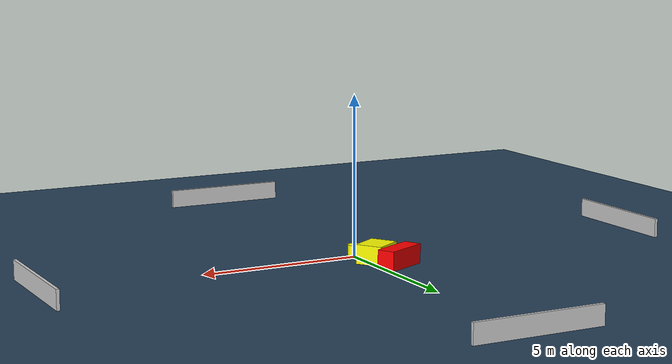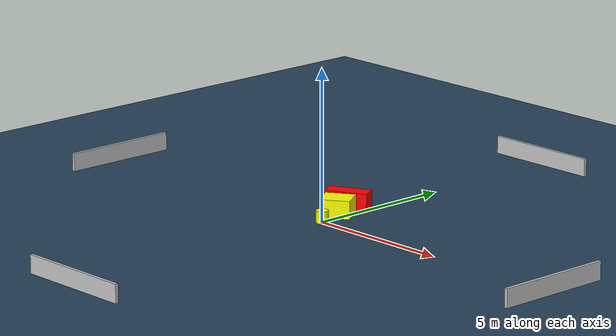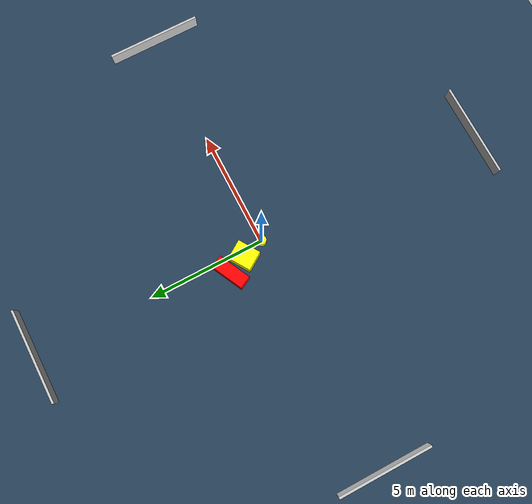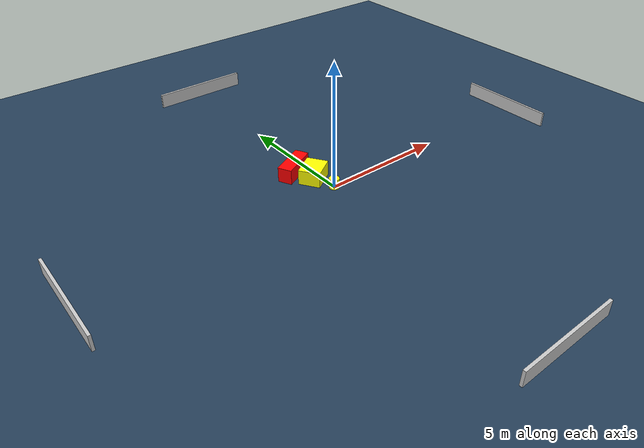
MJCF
<?xml version="1.0" ?>
<mujoco model="generated_environment">
  <option timestep="0.01" integrator="RK4" cone="elliptic"/>
  <default>
    <geom density="1"/>
  </default>
  <asset>
    <texture builtin="gradient" height="3072" name="skybox" rgb1="0.3 0.5 0.7" rgb2="0 0 0" type="skybox" width="512"/>
    <texture builtin="checker" height="300" name="groundplane" rgb1="0.2 0.3 0.4" rgb2="0.1 0.2 0.3" type="2d" width="300"/>
    <material name="groundplane" reflectance="0.2" texrepeat="5 5" texture="groundplane"/>
  </asset>
  <worldbody>
    <light dir="0 0 -1" directional="true" pos="0 0 1.5"/>
    <geom condim="3" friction="0.5 0.005 0.001" material="groundplane" name="floor" pos="0 0 0" size="0 0 0.05" type="plane"/>
    <body name="walls">
      <geom name="wall_1" condim="4" pos="-10.0 0.0 0.3" rgba="0.800000011920929 0.800000011920929 0.800000011920929 1.0" size="0.05 2.0 0.3" type="box"/>
      <geom name="wall_2" condim="4" pos="10.0 0.0 0.3" rgba="0.800000011920929 0.800000011920929 0.800000011920929 1.0" size="0.05 2.0 0.3" type="box"/>
      <geom name="wall_3" condim="4" pos="0.0 -10.0 0.3" rgba="0.800000011920929 0.800000011920929 0.800000011920929 1.0" size="2.0 0.05 0.3" type="box"/>
      <geom name="wall_4" condim="4" pos="0.0 10.0 0.3" rgba="0.800000011920929 0.800000011920929 0.800000011920929 1.0" size="2.0 0.05 0.3" type="box"/>
    </body>
    <body name="robot">
      <joint name="joint_x" type="slide" pos="0 0 0" axis="1 0 0"/>
      <joint name="joint_y" type="slide" pos="0 0 0" axis="0 1 0"/>
      <geom name="robot" type="cylinder" pos="0.0 0.0 0.2" size="0.2 0.2 0.0" mass="5.0" friction="1.0 0.005 0.0001" condim="4" rgba="1.0 1.0 0.0 1.0"/>
    </body>
    <body name="obstacle_1_movable">
      <geom name="obstacle_1_movable" condim="4" pos="-0.2671114883123193 0.9205629370833132 0.3" euler="0 0 303.0274715865305" friction="0.0 0.005 0.001" rgba="1.0 1.0 0.0 1.0" size="0.4242682692242829 0.495229937990307 0.3" type="box" mass="0.1"/>
      <joint type="free"/>
    </body>
    <body name="obstacle_2_static">
      <geom name="obstacle_2_static" condim="4" pos="-0.6194429859723113 1.708138587099937 0.3" euler="0 0 206.58536445497919" friction="0.0 0.005 0.001" rgba="1.0 0.0 0.0 1.0" size="0.7221302752739975 0.2787170920924887 0.3" type="box"/>
    </body>
  </worldbody>
  <actuator>
    <motor name="actuator_x" joint="joint_x" gear="1" ctrlrange="-1 1"/>
    <motor name="actuator_y" joint="joint_y" gear="1" ctrlrange="-1 1"/>
  </actuator>
</mujoco>
